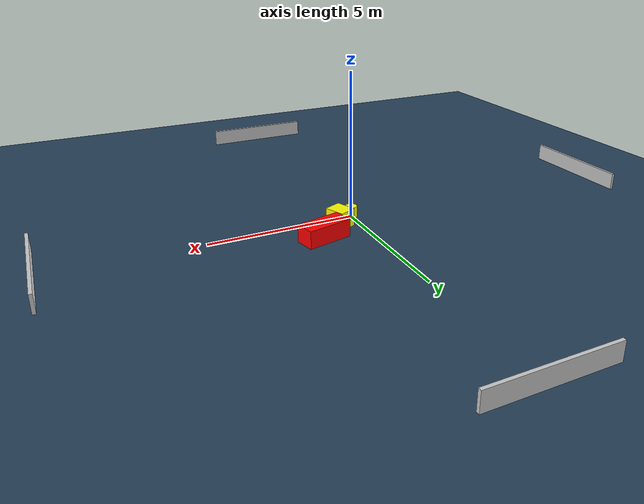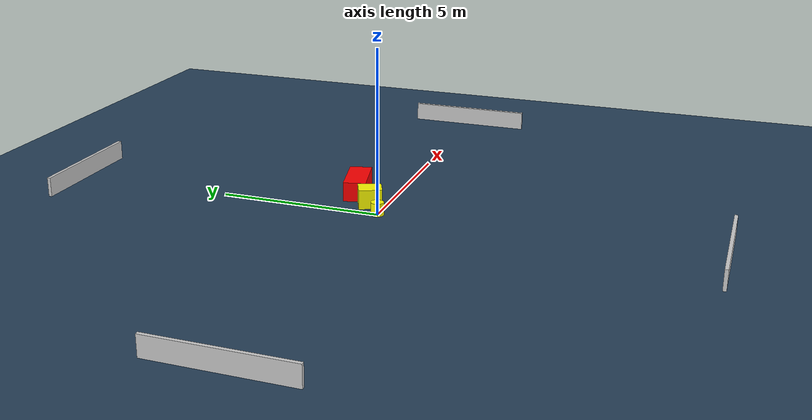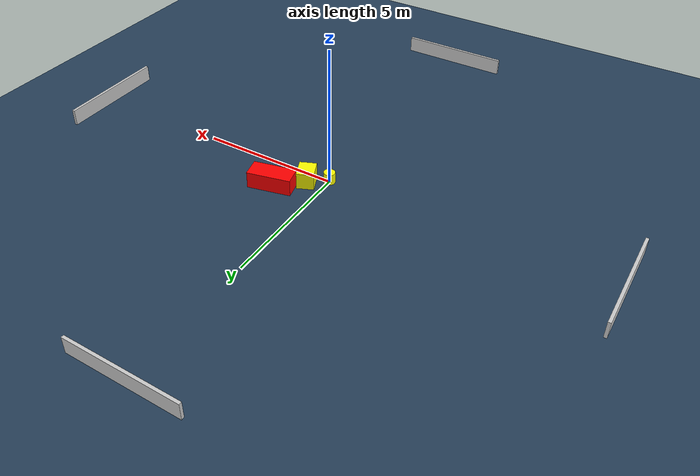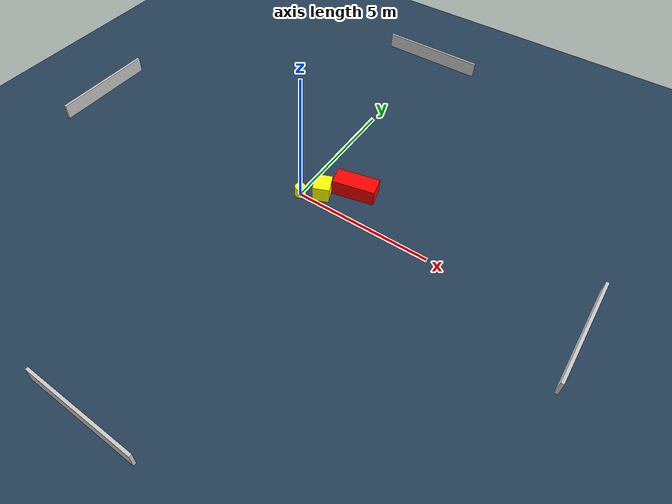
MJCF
<?xml version="1.0" ?>
<mujoco model="generated_environment">
  <option timestep="0.01" integrator="RK4" cone="elliptic"/>
  <default>
    <geom density="1"/>
  </default>
  <asset>
    <texture builtin="gradient" height="3072" name="skybox" rgb1="0.3 0.5 0.7" rgb2="0 0 0" type="skybox" width="512"/>
    <texture builtin="checker" height="300" name="groundplane" rgb1="0.2 0.3 0.4" rgb2="0.1 0.2 0.3" type="2d" width="300"/>
    <material name="groundplane" reflectance="0.2" texrepeat="5 5" texture="groundplane"/>
  </asset>
  <worldbody>
    <light dir="0 0 -1" directional="true" pos="0 0 1.5"/>
    <geom condim="3" friction="0.5 0.005 0.001" material="groundplane" name="floor" pos="0 0 0" size="0 0 0.05" type="plane"/>
    <body name="walls">
      <geom name="wall_1" condim="4" pos="-10.0 0.0 0.3" rgba="0.800000011920929 0.800000011920929 0.800000011920929 1.0" size="0.05 2.0 0.3" type="box"/>
      <geom name="wall_2" condim="4" pos="10.0 0.0 0.3" rgba="0.800000011920929 0.800000011920929 0.800000011920929 1.0" size="0.05 2.0 0.3" type="box"/>
      <geom name="wall_3" condim="4" pos="0.0 -10.0 0.3" rgba="0.800000011920929 0.800000011920929 0.800000011920929 1.0" size="2.0 0.05 0.3" type="box"/>
      <geom name="wall_4" condim="4" pos="0.0 10.0 0.3" rgba="0.800000011920929 0.800000011920929 0.800000011920929 1.0" size="2.0 0.05 0.3" type="box"/>
    </body>
    <body name="robot">
      <joint name="joint_x" type="slide" pos="0 0 0" axis="1 0 0"/>
      <joint name="joint_y" type="slide" pos="0 0 0" axis="0 1 0"/>
      <geom name="robot" type="cylinder" pos="0.0 0.0 0.2" size="0.2 0.2 0.0" mass="5.0" friction="1.0 0.005 0.0001" condim="4" rgba="1.0 1.0 0.0 1.0"/>
    </body>
    <body name="obstacle_1_movable">
      <geom name="obstacle_1_movable" condim="4" pos="0.6228947505881887 0.4615236011491774 0.3" euler="0 0 113.43396671790936" friction="0.0 0.005 0.001" rgba="1.0 1.0 0.0 1.0" size="0.35540129575376245 0.30034164868775104 0.3" type="box" mass="0.1"/>
      <joint type="free"/>
    </body>
    <body name="obstacle_2_static">
      <geom name="obstacle_2_static" condim="4" pos="1.5324650682075032 1.2009669318043725 0.3" euler="0 0 13.177413918483282" friction="0.0 0.005 0.001" rgba="1.0 0.0 0.0 1.0" size="0.7700097223361995 0.34544738438062594 0.3" type="box"/>
    </body>
  </worldbody>
  <actuator>
    <motor name="actuator_x" joint="joint_x" gear="1" ctrlrange="-1 1"/>
    <motor name="actuator_y" joint="joint_y" gear="1" ctrlrange="-1 1"/>
  </actuator>
</mujoco>
